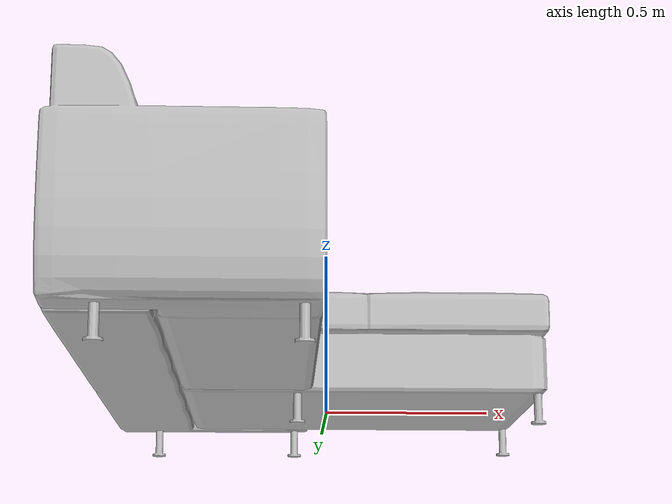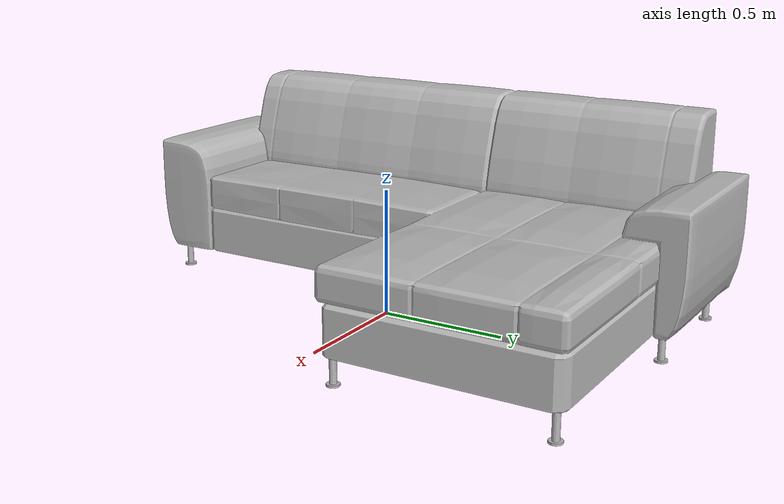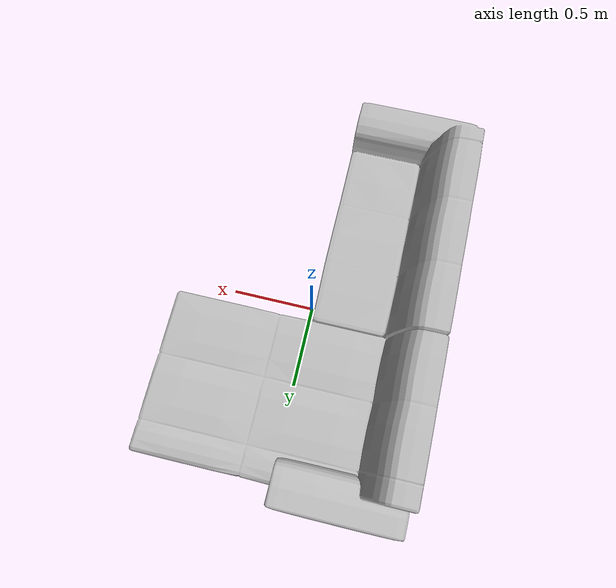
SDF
<?xml version='1.0'?>
<sdf version='1.4'>
  <model name='168'>
    <pose>0 0 0 0 0 0</pose>
    <static>true</static>
    <link name='link'>
      <collision name='collision'>
        <pose>0 0 0 0 0 0</pose>
        <geometry>
          <box>
            <size>1.49 2.38031 2</size>
          </box>
        </geometry>
      </collision>
      <visual name='visual'>
        <pose>0 0 0 0 0 0</pose>
        <geometry>
          <mesh><uri>model://168/168.dae</uri></mesh>
        </geometry>
      </visual>
    </link>
  </model>
</sdf>
